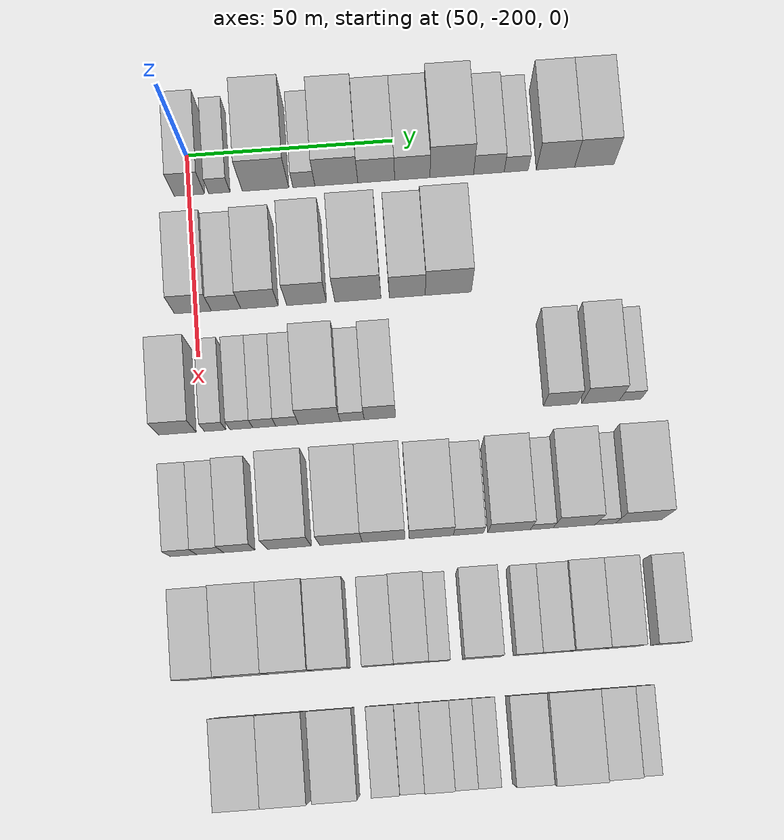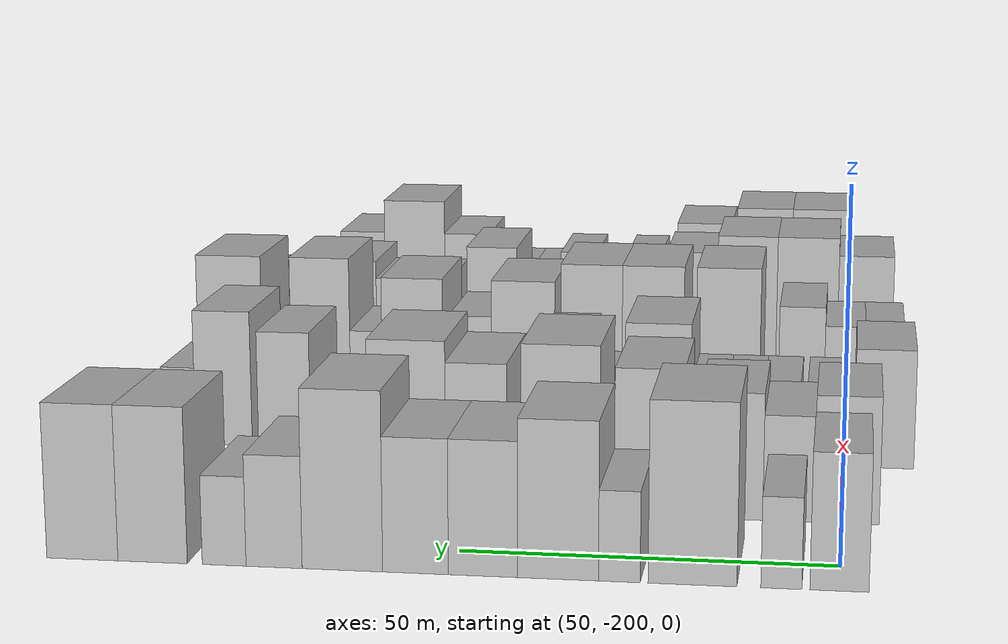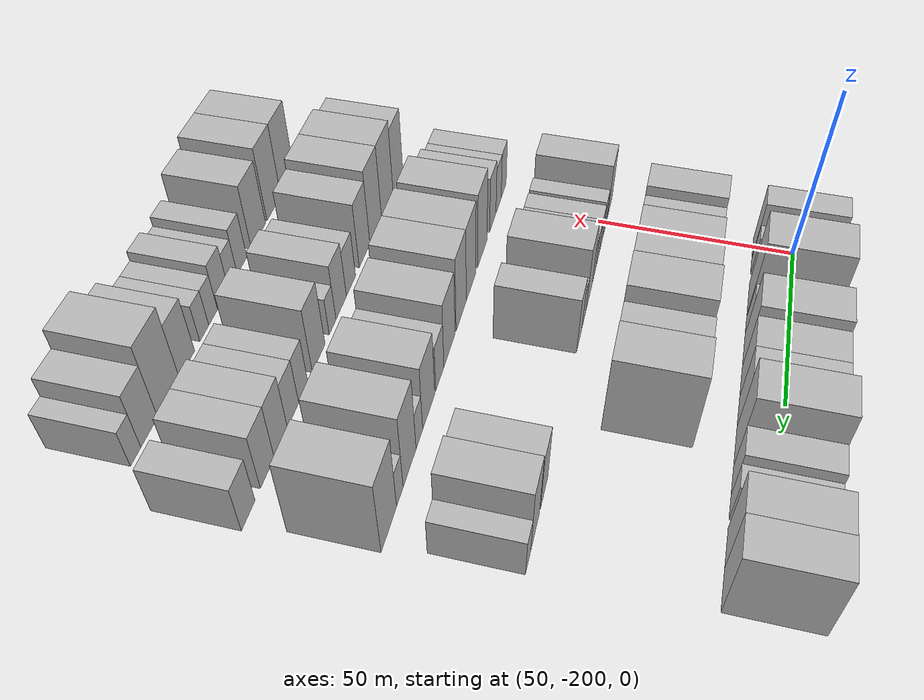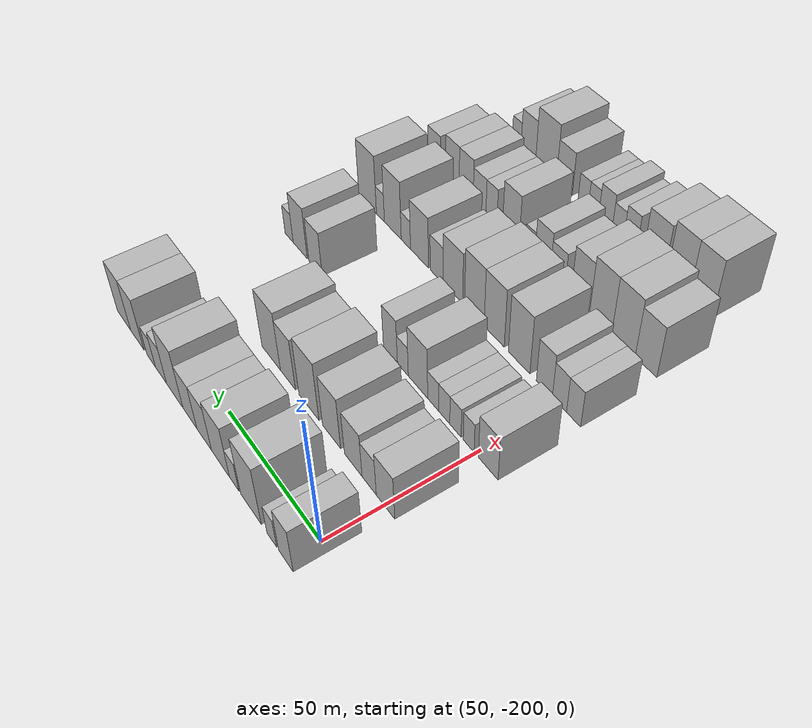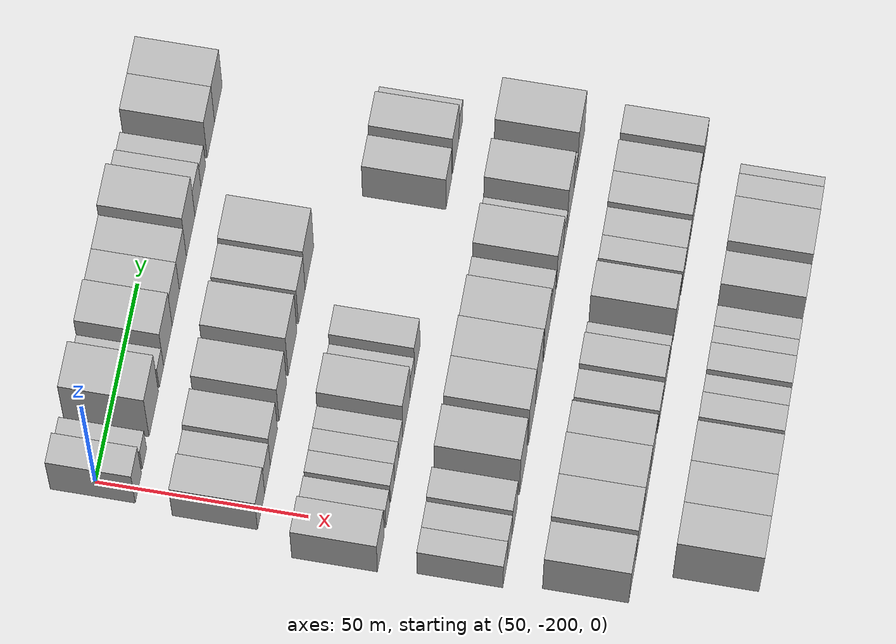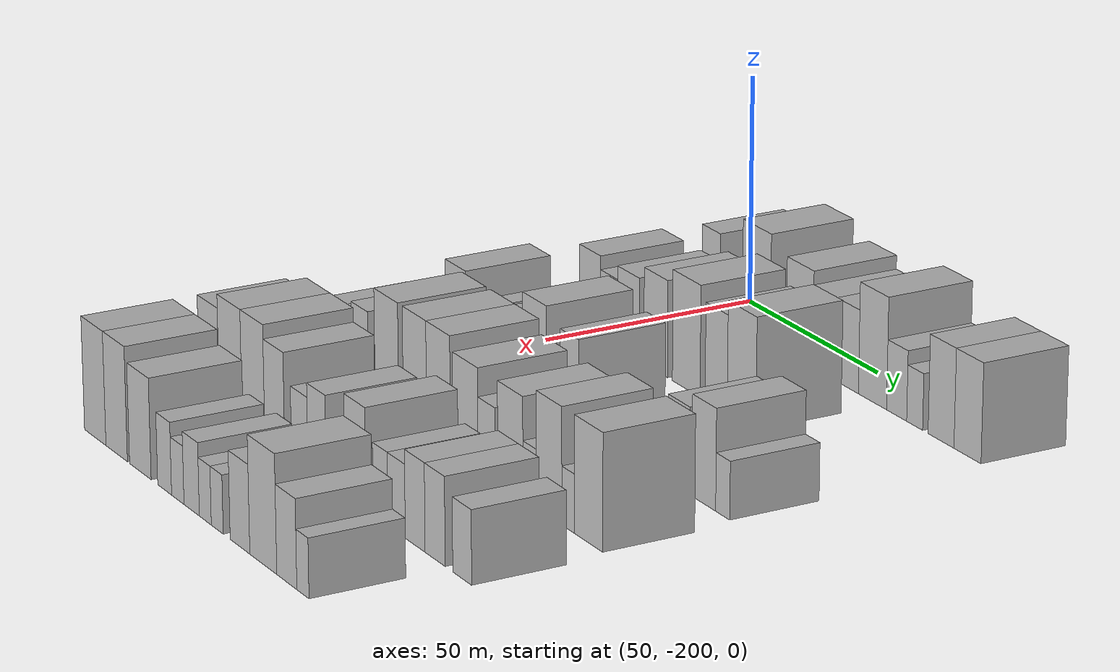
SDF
<sdf version="1.6">
 <world name="default">
  <model name="building_36">
   <static>1</static>
   <pose>50.0000 -199.8743 0 0.000000 0.000000 0.000000</pose>
   <link name="link">
    <pose>0 0 9.00 0 0 0</pose>
    <collision name="collision"><geometry><box><size>20.0000 7.3781 18.0000</size></box></geometry></collision>
    <visual name="visual">
     <cast_shadows>0</cast_shadows>
     <geometry><box><size>20.0000 7.3781 18.0000</size></box></geometry>
     <material>
      <script>
       <uri>model://HANNAS_wall/materials/scripts</uri>
       <uri>model://HANNAS_wall/materials/textures</uri>
       <name>vrc/HANNAS_wall</name>
      </script>
     </material>
    </visual>
   </link>
  </model>
  <model name="building_37">
   <static>1</static>
   <pose>50.0000 -192.6110 0 0.000000 0.000000 0.000000</pose>
   <link name="link">
    <pose>0 0 6.00 0 0 0</pose>
    <collision name="collision"><geometry><box><size>20.0000 5.1484 12.0000</size></box></geometry></collision>
    <visual name="visual">
     <cast_shadows>0</cast_shadows>
     <geometry><box><size>20.0000 5.1484 12.0000</size></box></geometry>
     <material>
      <script>
       <uri>model://HANNAS_wall/materials/scripts</uri>
       <uri>model://HANNAS_wall/materials/textures</uri>
       <name>vrc/HANNAS_wall</name>
      </script>
     </material>
    </visual>
   </link>
  </model>
  <model name="building_38">
   <static>1</static>
   <pose>50.0000 -181.4096 0 0.000000 0.000000 0.000000</pose>
   <link name="link">
    <pose>0 0 12.00 0 0 0</pose>
    <collision name="collision"><geometry><box><size>20.0000 11.2545 24.0000</size></box></geometry></collision>
    <visual name="visual">
     <cast_shadows>0</cast_shadows>
     <geometry><box><size>20.0000 11.2545 24.0000</size></box></geometry>
     <material>
      <script>
       <uri>model://HANNAS_wall/materials/scripts</uri>
       <uri>model://HANNAS_wall/materials/textures</uri>
       <name>vrc/HANNAS_wall</name>
      </script>
     </material>
    </visual>
   </link>
  </model>
  <model name="building_39">
   <static>1</static>
   <pose>50.0000 -172.1249 0 0.000000 0.000000 0.000000</pose>
   <link name="link">
    <pose>0 0 6.00 0 0 0</pose>
    <collision name="collision"><geometry><box><size>20.0000 5.3148 12.0000</size></box></geometry></collision>
    <visual name="visual">
     <cast_shadows>0</cast_shadows>
     <geometry><box><size>20.0000 5.3148 12.0000</size></box></geometry>
     <material>
      <script>
       <uri>model://HANNAS_wall/materials/scripts</uri>
       <uri>model://HANNAS_wall/materials/textures</uri>
       <name>vrc/HANNAS_wall</name>
      </script>
     </material>
    </visual>
   </link>
  </model>
  <model name="building_40">
   <static>1</static>
   <pose>50.0000 -164.2645 0 0.000000 0.000000 0.000000</pose>
   <link name="link">
    <pose>0 0 10.50 0 0 0</pose>
    <collision name="collision"><geometry><box><size>20.0000 10.4061 21.0000</size></box></geometry></collision>
    <visual name="visual">
     <cast_shadows>0</cast_shadows>
     <geometry><box><size>20.0000 10.4061 21.0000</size></box></geometry>
     <material>
      <script>
       <uri>model://HANNAS_wall/materials/scripts</uri>
       <uri>model://HANNAS_wall/materials/textures</uri>
       <name>vrc/HANNAS_wall</name>
      </script>
     </material>
    </visual>
   </link>
  </model>
  <model name="building_41">
   <static>1</static>
   <pose>50.0000 -154.5914 0 0.000000 0.000000 0.000000</pose>
   <link name="link">
    <pose>0 0 9.00 0 0 0</pose>
    <collision name="collision"><geometry><box><size>20.0000 8.9401 18.0000</size></box></geometry></collision>
    <visual name="visual">
     <cast_shadows>0</cast_shadows>
     <geometry><box><size>20.0000 8.9401 18.0000</size></box></geometry>
     <material>
      <script>
       <uri>model://HANNAS_wall/materials/scripts</uri>
       <uri>model://HANNAS_wall/materials/textures</uri>
       <name>vrc/HANNAS_wall</name>
      </script>
     </material>
    </visual>
   </link>
  </model>
  <model name="building_42">
   <static>1</static>
   <pose>50.0000 -145.8395 0 0.000000 0.000000 0.000000</pose>
   <link name="link">
    <pose>0 0 9.00 0 0 0</pose>
    <collision name="collision"><geometry><box><size>20.0000 8.5636 18.0000</size></box></geometry></collision>
    <visual name="visual">
     <cast_shadows>0</cast_shadows>
     <geometry><box><size>20.0000 8.5636 18.0000</size></box></geometry>
     <material>
      <script>
       <uri>model://HANNAS_wall/materials/scripts</uri>
       <uri>model://HANNAS_wall/materials/textures</uri>
       <name>vrc/HANNAS_wall</name>
      </script>
     </material>
    </visual>
   </link>
  </model>
  <model name="building_43">
   <static>1</static>
   <pose>50.0000 -136.2697 0 0.000000 0.000000 0.000000</pose>
   <link name="link">
    <pose>0 0 12.00 0 0 0</pose>
    <collision name="collision"><geometry><box><size>20.0000 10.5761 24.0000</size></box></geometry></collision>
    <visual name="visual">
     <cast_shadows>0</cast_shadows>
     <geometry><box><size>20.0000 10.5761 24.0000</size></box></geometry>
     <material>
      <script>
       <uri>model://HANNAS_wall/materials/scripts</uri>
       <uri>model://HANNAS_wall/materials/textures</uri>
       <name>vrc/HANNAS_wall</name>
      </script>
     </material>
    </visual>
   </link>
  </model>
  <model name="building_44">
   <static>1</static>
   <pose>50.0000 -127.2635 0 0.000000 0.000000 0.000000</pose>
   <link name="link">
    <pose>0 0 7.50 0 0 0</pose>
    <collision name="collision"><geometry><box><size>20.0000 7.4361 15.0000</size></box></geometry></collision>
    <visual name="visual">
     <cast_shadows>0</cast_shadows>
     <geometry><box><size>20.0000 7.4361 15.0000</size></box></geometry>
     <material>
      <script>
       <uri>model://HANNAS_wall/materials/scripts</uri>
       <uri>model://HANNAS_wall/materials/textures</uri>
       <name>vrc/HANNAS_wall</name>
      </script>
     </material>
    </visual>
   </link>
  </model>
  <model name="building_45">
   <static>1</static>
   <pose>50.0000 -120.6309 0 0.000000 0.000000 0.000000</pose>
   <link name="link">
    <pose>0 0 6.00 0 0 0</pose>
    <collision name="collision"><geometry><box><size>20.0000 5.8292 12.0000</size></box></geometry></collision>
    <visual name="visual">
     <cast_shadows>0</cast_shadows>
     <geometry><box><size>20.0000 5.8292 12.0000</size></box></geometry>
     <material>
      <script>
       <uri>model://HANNAS_wall/materials/scripts</uri>
       <uri>model://HANNAS_wall/materials/textures</uri>
       <name>vrc/HANNAS_wall</name>
      </script>
     </material>
    </visual>
   </link>
  </model>
  <model name="building_46">
   <static>1</static>
   <pose>50.0000 -111.0627 0 0.000000 0.000000 0.000000</pose>
   <link name="link">
    <pose>0 0 10.50 0 0 0</pose>
    <collision name="collision"><geometry><box><size>20.0000 9.3072 21.0000</size></box></geometry></collision>
    <visual name="visual">
     <cast_shadows>0</cast_shadows>
     <geometry><box><size>20.0000 9.3072 21.0000</size></box></geometry>
     <material>
      <script>
       <uri>model://HANNAS_wall/materials/scripts</uri>
       <uri>model://HANNAS_wall/materials/textures</uri>
       <name>vrc/HANNAS_wall</name>
      </script>
     </material>
    </visual>
   </link>
  </model>
  <model name="building_47">
   <static>1</static>
   <pose>50.0000 -101.6042 0 0.000000 0.000000 0.000000</pose>
   <link name="link">
    <pose>0 0 10.50 0 0 0</pose>
    <collision name="collision"><geometry><box><size>20.0000 9.6098 21.0000</size></box></geometry></collision>
    <visual name="visual">
     <cast_shadows>0</cast_shadows>
     <geometry><box><size>20.0000 9.6098 21.0000</size></box></geometry>
     <material>
      <script>
       <uri>model://HANNAS_wall/materials/scripts</uri>
       <uri>model://HANNAS_wall/materials/textures</uri>
       <name>vrc/HANNAS_wall</name>
      </script>
     </material>
    </visual>
   </link>
  </model>
  <model name="building_146">
   <static>1</static>
   <pose>79.0000 -200.6198 0 0.000000 0.000000 0.000000</pose>
   <link name="link">
    <pose>0 0 9.00 0 0 0</pose>
    <collision name="collision"><geometry><box><size>20.0000 8.8712 18.0000</size></box></geometry></collision>
    <visual name="visual">
     <cast_shadows>0</cast_shadows>
     <geometry><box><size>20.0000 8.8712 18.0000</size></box></geometry>
     <material>
      <script>
       <uri>model://HANNAS_wall/materials/scripts</uri>
       <uri>model://HANNAS_wall/materials/textures</uri>
       <name>vrc/HANNAS_wall</name>
      </script>
     </material>
    </visual>
   </link>
  </model>
  <model name="building_147">
   <static>1</static>
   <pose>79.0000 -192.6700 0 0.000000 0.000000 0.000000</pose>
   <link name="link">
    <pose>0 0 7.50 0 0 0</pose>
    <collision name="collision"><geometry><box><size>20.0000 7.0284 15.0000</size></box></geometry></collision>
    <visual name="visual">
     <cast_shadows>0</cast_shadows>
     <geometry><box><size>20.0000 7.0284 15.0000</size></box></geometry>
     <material>
      <script>
       <uri>model://HANNAS_wall/materials/scripts</uri>
       <uri>model://HANNAS_wall/materials/textures</uri>
       <name>vrc/HANNAS_wall</name>
      </script>
     </material>
    </visual>
   </link>
  </model>
  <model name="building_148">
   <static>1</static>
   <pose>79.0000 -184.6630 0 0.000000 0.000000 0.000000</pose>
   <link name="link">
    <pose>0 0 9.00 0 0 0</pose>
    <collision name="collision"><geometry><box><size>20.0000 8.9857 18.0000</size></box></geometry></collision>
    <visual name="visual">
     <cast_shadows>0</cast_shadows>
     <geometry><box><size>20.0000 8.9857 18.0000</size></box></geometry>
     <material>
      <script>
       <uri>model://HANNAS_wall/materials/scripts</uri>
       <uri>model://HANNAS_wall/materials/textures</uri>
       <name>vrc/HANNAS_wall</name>
      </script>
     </material>
    </visual>
   </link>
  </model>
  <model name="building_149">
   <static>1</static>
   <pose>79.0000 -173.3785 0 0.000000 0.000000 0.000000</pose>
   <link name="link">
    <pose>0 0 10.50 0 0 0</pose>
    <collision name="collision"><geometry><box><size>20.0000 9.5834 21.0000</size></box></geometry></collision>
    <visual name="visual">
     <cast_shadows>0</cast_shadows>
     <geometry><box><size>20.0000 9.5834 21.0000</size></box></geometry>
     <material>
      <script>
       <uri>model://HANNAS_wall/materials/scripts</uri>
       <uri>model://HANNAS_wall/materials/textures</uri>
       <name>vrc/HANNAS_wall</name>
      </script>
     </material>
    </visual>
   </link>
  </model>
  <model name="building_150">
   <static>1</static>
   <pose>79.0000 -161.0557 0 0.000000 0.000000 0.000000</pose>
   <link name="link">
    <pose>0 0 12.00 0 0 0</pose>
    <collision name="collision"><geometry><box><size>20.0000 11.0622 24.0000</size></box></geometry></collision>
    <visual name="visual">
     <cast_shadows>0</cast_shadows>
     <geometry><box><size>20.0000 11.0622 24.0000</size></box></geometry>
     <material>
      <script>
       <uri>model://HANNAS_wall/materials/scripts</uri>
       <uri>model://HANNAS_wall/materials/textures</uri>
       <name>vrc/HANNAS_wall</name>
      </script>
     </material>
    </visual>
   </link>
  </model>
  <model name="building_151">
   <static>1</static>
   <pose>79.0000 -149.2104 0 0.000000 0.000000 0.000000</pose>
   <link name="link">
    <pose>0 0 10.50 0 0 0</pose>
    <collision name="collision"><geometry><box><size>20.0000 8.6285 21.0000</size></box></geometry></collision>
    <visual name="visual">
     <cast_shadows>0</cast_shadows>
     <geometry><box><size>20.0000 8.6285 21.0000</size></box></geometry>
     <material>
      <script>
       <uri>model://HANNAS_wall/materials/scripts</uri>
       <uri>model://HANNAS_wall/materials/textures</uri>
       <name>vrc/HANNAS_wall</name>
      </script>
     </material>
    </visual>
   </link>
  </model>
  <model name="building_152">
   <static>1</static>
   <pose>79.0000 -139.3650 0 0.000000 0.000000 0.000000</pose>
   <link name="link">
    <pose>0 0 12.00 0 0 0</pose>
    <collision name="collision"><geometry><box><size>20.0000 11.0624 24.0000</size></box></geometry></collision>
    <visual name="visual">
     <cast_shadows>0</cast_shadows>
     <geometry><box><size>20.0000 11.0624 24.0000</size></box></geometry>
     <material>
      <script>
       <uri>model://HANNAS_wall/materials/scripts</uri>
       <uri>model://HANNAS_wall/materials/textures</uri>
       <name>vrc/HANNAS_wall</name>
      </script>
     </material>
    </visual>
   </link>
  </model>
  <model name="building_251">
   <static>1</static>
   <pose>108.0000 -205.9452 0 0.000000 0.000000 0.000000</pose>
   <link name="link">
    <pose>0 0 9.00 0 0 0</pose>
    <collision name="collision"><geometry><box><size>20.0000 8.8668 18.0000</size></box></geometry></collision>
    <visual name="visual">
     <cast_shadows>0</cast_shadows>
     <geometry><box><size>20.0000 8.8668 18.0000</size></box></geometry>
     <material>
      <script>
       <uri>model://HANNAS_wall/materials/scripts</uri>
       <uri>model://HANNAS_wall/materials/textures</uri>
       <name>vrc/HANNAS_wall</name>
      </script>
     </material>
    </visual>
   </link>
  </model>
  <model name="building_252">
   <static>1</static>
   <pose>108.0000 -196.9844 0 0.000000 0.000000 0.000000</pose>
   <link name="link">
    <pose>0 0 6.00 0 0 0</pose>
    <collision name="collision"><geometry><box><size>20.0000 5.0547 12.0000</size></box></geometry></collision>
    <visual name="visual">
     <cast_shadows>0</cast_shadows>
     <geometry><box><size>20.0000 5.0547 12.0000</size></box></geometry>
     <material>
      <script>
       <uri>model://HANNAS_wall/materials/scripts</uri>
       <uri>model://HANNAS_wall/materials/textures</uri>
       <name>vrc/HANNAS_wall</name>
      </script>
     </material>
    </visual>
   </link>
  </model>
  <model name="building_253">
   <static>1</static>
   <pose>108.0000 -190.7448 0 0.000000 0.000000 0.000000</pose>
   <link name="link">
    <pose>0 0 6.00 0 0 0</pose>
    <collision name="collision"><geometry><box><size>20.0000 5.4245 12.0000</size></box></geometry></collision>
    <visual name="visual">
     <cast_shadows>0</cast_shadows>
     <geometry><box><size>20.0000 5.4245 12.0000</size></box></geometry>
     <material>
      <script>
       <uri>model://HANNAS_wall/materials/scripts</uri>
       <uri>model://HANNAS_wall/materials/textures</uri>
       <name>vrc/HANNAS_wall</name>
      </script>
     </material>
    </visual>
   </link>
  </model>
  <model name="building_254">
   <static>1</static>
   <pose>108.0000 -185.3062 0 0.000000 0.000000 0.000000</pose>
   <link name="link">
    <pose>0 0 6.00 0 0 0</pose>
    <collision name="collision"><geometry><box><size>20.0000 5.4527 12.0000</size></box></geometry></collision>
    <visual name="visual">
     <cast_shadows>0</cast_shadows>
     <geometry><box><size>20.0000 5.4527 12.0000</size></box></geometry>
     <material>
      <script>
       <uri>model://HANNAS_wall/materials/scripts</uri>
       <uri>model://HANNAS_wall/materials/textures</uri>
       <name>vrc/HANNAS_wall</name>
      </script>
     </material>
    </visual>
   </link>
  </model>
  <model name="building_255">
   <static>1</static>
   <pose>108.0000 -179.8728 0 0.000000 0.000000 0.000000</pose>
   <link name="link">
    <pose>0 0 6.00 0 0 0</pose>
    <collision name="collision"><geometry><box><size>20.0000 5.4140 12.0000</size></box></geometry></collision>
    <visual name="visual">
     <cast_shadows>0</cast_shadows>
     <geometry><box><size>20.0000 5.4140 12.0000</size></box></geometry>
     <material>
      <script>
       <uri>model://HANNAS_wall/materials/scripts</uri>
       <uri>model://HANNAS_wall/materials/textures</uri>
       <name>vrc/HANNAS_wall</name>
      </script>
     </material>
    </visual>
   </link>
  </model>
  <model name="building_256">
   <static>1</static>
   <pose>108.0000 -172.2423 0 0.000000 0.000000 0.000000</pose>
   <link name="link">
    <pose>0 0 10.50 0 0 0</pose>
    <collision name="collision"><geometry><box><size>20.0000 9.8471 21.0000</size></box></geometry></collision>
    <visual name="visual">
     <cast_shadows>0</cast_shadows>
     <geometry><box><size>20.0000 9.8471 21.0000</size></box></geometry>
     <material>
      <script>
       <uri>model://HANNAS_wall/materials/scripts</uri>
       <uri>model://HANNAS_wall/materials/textures</uri>
       <name>vrc/HANNAS_wall</name>
      </script>
     </material>
    </visual>
   </link>
  </model>
  <model name="building_257">
   <static>1</static>
   <pose>108.0000 -164.4592 0 0.000000 0.000000 0.000000</pose>
   <link name="link">
    <pose>0 0 6.00 0 0 0</pose>
    <collision name="collision"><geometry><box><size>20.0000 5.7191 12.0000</size></box></geometry></collision>
    <visual name="visual">
     <cast_shadows>0</cast_shadows>
     <geometry><box><size>20.0000 5.7191 12.0000</size></box></geometry>
     <material>
      <script>
       <uri>model://HANNAS_wall/materials/scripts</uri>
       <uri>model://HANNAS_wall/materials/textures</uri>
       <name>vrc/HANNAS_wall</name>
      </script>
     </material>
    </visual>
   </link>
  </model>
  <model name="building_258">
   <static>1</static>
   <pose>108.0000 -157.8819 0 0.000000 0.000000 0.000000</pose>
   <link name="link">
    <pose>0 0 9.00 0 0 0</pose>
    <collision name="collision"><geometry><box><size>20.0000 7.4354 18.0000</size></box></geometry></collision>
    <visual name="visual">
     <cast_shadows>0</cast_shadows>
     <geometry><box><size>20.0000 7.4354 18.0000</size></box></geometry>
     <material>
      <script>
       <uri>model://HANNAS_wall/materials/scripts</uri>
       <uri>model://HANNAS_wall/materials/textures</uri>
       <name>vrc/HANNAS_wall</name>
      </script>
     </material>
    </visual>
   </link>
  </model>
  <model name="building_259">
   <static>1</static>
   <pose>108.0000 -114.9120 0 0.000000 0.000000 0.000000</pose>
   <link name="link">
    <pose>0 0 9.00 0 0 0</pose>
    <collision name="collision"><geometry><box><size>20.0000 8.1681 18.0000</size></box></geometry></collision>
    <visual name="visual">
     <cast_shadows>0</cast_shadows>
     <geometry><box><size>20.0000 8.1681 18.0000</size></box></geometry>
     <material>
      <script>
       <uri>model://HANNAS_wall/materials/scripts</uri>
       <uri>model://HANNAS_wall/materials/textures</uri>
       <name>vrc/HANNAS_wall</name>
      </script>
     </material>
    </visual>
   </link>
  </model>
  <model name="building_260">
   <static>1</static>
   <pose>108.0000 -105.3697 0 0.000000 0.000000 0.000000</pose>
   <link name="link">
    <pose>0 0 10.50 0 0 0</pose>
    <collision name="collision"><geometry><box><size>20.0000 8.9165 21.0000</size></box></geometry></collision>
    <visual name="visual">
     <cast_shadows>0</cast_shadows>
     <geometry><box><size>20.0000 8.9165 21.0000</size></box></geometry>
     <material>
      <script>
       <uri>model://HANNAS_wall/materials/scripts</uri>
       <uri>model://HANNAS_wall/materials/textures</uri>
       <name>vrc/HANNAS_wall</name>
      </script>
     </material>
    </visual>
   </link>
  </model>
  <model name="building_261">
   <static>1</static>
   <pose>108.0000 -98.2957 0 0.000000 0.000000 0.000000</pose>
   <link name="link">
    <pose>0 0 6.00 0 0 0</pose>
    <collision name="collision"><geometry><box><size>20.0000 5.2314 12.0000</size></box></geometry></collision>
    <visual name="visual">
     <cast_shadows>0</cast_shadows>
     <geometry><box><size>20.0000 5.2314 12.0000</size></box></geometry>
     <material>
      <script>
       <uri>model://HANNAS_wall/materials/scripts</uri>
       <uri>model://HANNAS_wall/materials/textures</uri>
       <name>vrc/HANNAS_wall</name>
      </script>
     </material>
    </visual>
   </link>
  </model>
  <model name="building_368">
   <static>1</static>
   <pose>137.0000 -206.0901 0 0.000000 0.000000 0.000000</pose>
   <link name="link">
    <pose>0 0 7.50 0 0 0</pose>
    <collision name="collision"><geometry><box><size>20.0000 6.2022 15.0000</size></box></geometry></collision>
    <visual name="visual">
     <cast_shadows>0</cast_shadows>
     <geometry><box><size>20.0000 6.2022 15.0000</size></box></geometry>
     <material>
      <script>
       <uri>model://HANNAS_wall/materials/scripts</uri>
       <uri>model://HANNAS_wall/materials/textures</uri>
       <name>vrc/HANNAS_wall</name>
      </script>
     </material>
    </visual>
   </link>
  </model>
  <model name="building_369">
   <static>1</static>
   <pose>137.0000 -199.8283 0 0.000000 0.000000 0.000000</pose>
   <link name="link">
    <pose>0 0 7.50 0 0 0</pose>
    <collision name="collision"><geometry><box><size>20.0000 6.3214 15.0000</size></box></geometry></collision>
    <visual name="visual">
     <cast_shadows>0</cast_shadows>
     <geometry><box><size>20.0000 6.3214 15.0000</size></box></geometry>
     <material>
      <script>
       <uri>model://HANNAS_wall/materials/scripts</uri>
       <uri>model://HANNAS_wall/materials/textures</uri>
       <name>vrc/HANNAS_wall</name>
      </script>
     </material>
    </visual>
   </link>
  </model>
  <model name="building_370">
   <static>1</static>
   <pose>137.0000 -192.9978 0 0.000000 0.000000 0.000000</pose>
   <link name="link">
    <pose>0 0 9.00 0 0 0</pose>
    <collision name="collision"><geometry><box><size>20.0000 7.3396 18.0000</size></box></geometry></collision>
    <visual name="visual">
     <cast_shadows>0</cast_shadows>
     <geometry><box><size>20.0000 7.3396 18.0000</size></box></geometry>
     <material>
      <script>
       <uri>model://HANNAS_wall/materials/scripts</uri>
       <uri>model://HANNAS_wall/materials/textures</uri>
       <name>vrc/HANNAS_wall</name>
      </script>
     </material>
    </visual>
   </link>
  </model>
  <model name="building_371">
   <static>1</static>
   <pose>137.0000 -181.1920 0 0.000000 0.000000 0.000000</pose>
   <link name="link">
    <pose>0 0 12.00 0 0 0</pose>
    <collision name="collision"><geometry><box><size>20.0000 10.2720 24.0000</size></box></geometry></collision>
    <visual name="visual">
     <cast_shadows>0</cast_shadows>
     <geometry><box><size>20.0000 10.2720 24.0000</size></box></geometry>
     <material>
      <script>
       <uri>model://HANNAS_wall/materials/scripts</uri>
       <uri>model://HANNAS_wall/materials/textures</uri>
       <name>vrc/HANNAS_wall</name>
      </script>
     </material>
    </visual>
   </link>
  </model>
  <model name="building_372">
   <static>1</static>
   <pose>137.0000 -169.0629 0 0.000000 0.000000 0.000000</pose>
   <link name="link">
    <pose>0 0 12.00 0 0 0</pose>
    <collision name="collision"><geometry><box><size>20.0000 9.9862 24.0000</size></box></geometry></collision>
    <visual name="visual">
     <cast_shadows>0</cast_shadows>
     <geometry><box><size>20.0000 9.9862 24.0000</size></box></geometry>
     <material>
      <script>
       <uri>model://HANNAS_wall/materials/scripts</uri>
       <uri>model://HANNAS_wall/materials/textures</uri>
       <name>vrc/HANNAS_wall</name>
      </script>
     </material>
    </visual>
   </link>
  </model>
  <model name="building_373">
   <static>1</static>
   <pose>137.0000 -159.0676 0 0.000000 0.000000 0.000000</pose>
   <link name="link">
    <pose>0 0 12.00 0 0 0</pose>
    <collision name="collision"><geometry><box><size>20.0000 10.0045 24.0000</size></box></geometry></collision>
    <visual name="visual">
     <cast_shadows>0</cast_shadows>
     <geometry><box><size>20.0000 10.0045 24.0000</size></box></geometry>
     <material>
      <script>
       <uri>model://HANNAS_wall/materials/scripts</uri>
       <uri>model://HANNAS_wall/materials/textures</uri>
       <name>vrc/HANNAS_wall</name>
      </script>
     </material>
    </visual>
   </link>
  </model>
  <model name="building_374">
   <static>1</static>
   <pose>137.0000 -147.8747 0 0.000000 0.000000 0.000000</pose>
   <link name="link">
    <pose>0 0 10.50 0 0 0</pose>
    <collision name="collision"><geometry><box><size>20.0000 10.3813 21.0000</size></box></geometry></collision>
    <visual name="visual">
     <cast_shadows>0</cast_shadows>
     <geometry><box><size>20.0000 10.3813 21.0000</size></box></geometry>
     <material>
      <script>
       <uri>model://HANNAS_wall/materials/scripts</uri>
       <uri>model://HANNAS_wall/materials/textures</uri>
       <name>vrc/HANNAS_wall</name>
      </script>
     </material>
    </visual>
   </link>
  </model>
  <model name="building_375">
   <static>1</static>
   <pose>137.0000 -139.1547 0 0.000000 0.000000 0.000000</pose>
   <link name="link">
    <pose>0 0 7.50 0 0 0</pose>
    <collision name="collision"><geometry><box><size>20.0000 7.0588 15.0000</size></box></geometry></collision>
    <visual name="visual">
     <cast_shadows>0</cast_shadows>
     <geometry><box><size>20.0000 7.0588 15.0000</size></box></geometry>
     <material>
      <script>
       <uri>model://HANNAS_wall/materials/scripts</uri>
       <uri>model://HANNAS_wall/materials/textures</uri>
       <name>vrc/HANNAS_wall</name>
      </script>
     </material>
    </visual>
   </link>
  </model>
  <model name="building_376">
   <static>1</static>
   <pose>137.0000 -129.5781 0 0.000000 0.000000 0.000000</pose>
   <link name="link">
    <pose>0 0 10.50 0 0 0</pose>
    <collision name="collision"><geometry><box><size>20.0000 10.0942 21.0000</size></box></geometry></collision>
    <visual name="visual">
     <cast_shadows>0</cast_shadows>
     <geometry><box><size>20.0000 10.0942 21.0000</size></box></geometry>
     <material>
      <script>
       <uri>model://HANNAS_wall/materials/scripts</uri>
       <uri>model://HANNAS_wall/materials/textures</uri>
       <name>vrc/HANNAS_wall</name>
      </script>
     </material>
    </visual>
   </link>
  </model>
  <model name="building_377">
   <static>1</static>
   <pose>137.0000 -121.8605 0 0.000000 0.000000 0.000000</pose>
   <link name="link">
    <pose>0 0 6.00 0 0 0</pose>
    <collision name="collision"><geometry><box><size>20.0000 5.3411 12.0000</size></box></geometry></collision>
    <visual name="visual">
     <cast_shadows>0</cast_shadows>
     <geometry><box><size>20.0000 5.3411 12.0000</size></box></geometry>
     <material>
      <script>
       <uri>model://HANNAS_wall/materials/scripts</uri>
       <uri>model://HANNAS_wall/materials/textures</uri>
       <name>vrc/HANNAS_wall</name>
      </script>
     </material>
    </visual>
   </link>
  </model>
  <model name="building_378">
   <static>1</static>
   <pose>137.0000 -114.2267 0 0.000000 0.000000 0.000000</pose>
   <link name="link">
    <pose>0 0 12.00 0 0 0</pose>
    <collision name="collision"><geometry><box><size>20.0000 9.9264 24.0000</size></box></geometry></collision>
    <visual name="visual">
     <cast_shadows>0</cast_shadows>
     <geometry><box><size>20.0000 9.9264 24.0000</size></box></geometry>
     <material>
      <script>
       <uri>model://HANNAS_wall/materials/scripts</uri>
       <uri>model://HANNAS_wall/materials/textures</uri>
       <name>vrc/HANNAS_wall</name>
      </script>
     </material>
    </visual>
   </link>
  </model>
  <model name="building_379">
   <static>1</static>
   <pose>137.0000 -106.8498 0 0.000000 0.000000 0.000000</pose>
   <link name="link">
    <pose>0 0 6.00 0 0 0</pose>
    <collision name="collision"><geometry><box><size>20.0000 4.8274 12.0000</size></box></geometry></collision>
    <visual name="visual">
     <cast_shadows>0</cast_shadows>
     <geometry><box><size>20.0000 4.8274 12.0000</size></box></geometry>
     <material>
      <script>
       <uri>model://HANNAS_wall/materials/scripts</uri>
       <uri>model://HANNAS_wall/materials/textures</uri>
       <name>vrc/HANNAS_wall</name>
      </script>
     </material>
    </visual>
   </link>
  </model>
  <model name="building_380">
   <static>1</static>
   <pose>137.0000 -99.0084 0 0.000000 0.000000 0.000000</pose>
   <link name="link">
    <pose>0 0 12.00 0 0 0</pose>
    <collision name="collision"><geometry><box><size>20.0000 10.8554 24.0000</size></box></geometry></collision>
    <visual name="visual">
     <cast_shadows>0</cast_shadows>
     <geometry><box><size>20.0000 10.8554 24.0000</size></box></geometry>
     <material>
      <script>
       <uri>model://HANNAS_wall/materials/scripts</uri>
       <uri>model://HANNAS_wall/materials/textures</uri>
       <name>vrc/HANNAS_wall</name>
      </script>
     </material>
    </visual>
   </link>
  </model>
  <model name="building_478">
   <static>1</static>
   <pose>166.0000 -203.1444 0 0.000000 0.000000 0.000000</pose>
   <link name="link">
    <pose>0 0 10.50 0 0 0</pose>
    <collision name="collision"><geometry><box><size>20.0000 9.3325 21.0000</size></box></geometry></collision>
    <visual name="visual">
     <cast_shadows>0</cast_shadows>
     <geometry><box><size>20.0000 9.3325 21.0000</size></box></geometry>
     <material>
      <script>
       <uri>model://HANNAS_wall/materials/scripts</uri>
       <uri>model://HANNAS_wall/materials/textures</uri>
       <name>vrc/HANNAS_wall</name>
      </script>
     </material>
    </visual>
   </link>
  </model>
  <model name="building_479">
   <static>1</static>
   <pose>166.0000 -193.2386 0 0.000000 0.000000 0.000000</pose>
   <link name="link">
    <pose>0 0 12.00 0 0 0</pose>
    <collision name="collision"><geometry><box><size>20.0000 10.4790 24.0000</size></box></geometry></collision>
    <visual name="visual">
     <cast_shadows>0</cast_shadows>
     <geometry><box><size>20.0000 10.4790 24.0000</size></box></geometry>
     <material>
      <script>
       <uri>model://HANNAS_wall/materials/scripts</uri>
       <uri>model://HANNAS_wall/materials/textures</uri>
       <name>vrc/HANNAS_wall</name>
      </script>
     </material>
    </visual>
   </link>
  </model>
  <model name="building_480">
   <static>1</static>
   <pose>166.0000 -182.8965 0 0.000000 0.000000 0.000000</pose>
   <link name="link">
    <pose>0 0 12.00 0 0 0</pose>
    <collision name="collision"><geometry><box><size>20.0000 10.2052 24.0000</size></box></geometry></collision>
    <visual name="visual">
     <cast_shadows>0</cast_shadows>
     <geometry><box><size>20.0000 10.2052 24.0000</size></box></geometry>
     <material>
      <script>
       <uri>model://HANNAS_wall/materials/scripts</uri>
       <uri>model://HANNAS_wall/materials/textures</uri>
       <name>vrc/HANNAS_wall</name>
      </script>
     </material>
    </visual>
   </link>
  </model>
  <model name="building_481">
   <static>1</static>
   <pose>166.0000 -173.3613 0 0.000000 0.000000 0.000000</pose>
   <link name="link">
    <pose>0 0 10.50 0 0 0</pose>
    <collision name="collision"><geometry><box><size>20.0000 8.8652 21.0000</size></box></geometry></collision>
    <visual name="visual">
     <cast_shadows>0</cast_shadows>
     <geometry><box><size>20.0000 8.8652 21.0000</size></box></geometry>
     <material>
      <script>
       <uri>model://HANNAS_wall/materials/scripts</uri>
       <uri>model://HANNAS_wall/materials/textures</uri>
       <name>vrc/HANNAS_wall</name>
      </script>
     </material>
    </visual>
   </link>
  </model>
  <model name="building_482">
   <static>1</static>
   <pose>166.0000 -162.3306 0 0.000000 0.000000 0.000000</pose>
   <link name="link">
    <pose>0 0 7.50 0 0 0</pose>
    <collision name="collision"><geometry><box><size>20.0000 7.1962 15.0000</size></box></geometry></collision>
    <visual name="visual">
     <cast_shadows>0</cast_shadows>
     <geometry><box><size>20.0000 7.1962 15.0000</size></box></geometry>
     <material>
      <script>
       <uri>model://HANNAS_wall/materials/scripts</uri>
       <uri>model://HANNAS_wall/materials/textures</uri>
       <name>vrc/HANNAS_wall</name>
      </script>
     </material>
    </visual>
   </link>
  </model>
  <model name="building_483">
   <static>1</static>
   <pose>166.0000 -154.7738 0 0.000000 0.000000 0.000000</pose>
   <link name="link">
    <pose>0 0 9.00 0 0 0</pose>
    <collision name="collision"><geometry><box><size>20.0000 7.9174 18.0000</size></box></geometry></collision>
    <visual name="visual">
     <cast_shadows>0</cast_shadows>
     <geometry><box><size>20.0000 7.9174 18.0000</size></box></geometry>
     <material>
      <script>
       <uri>model://HANNAS_wall/materials/scripts</uri>
       <uri>model://HANNAS_wall/materials/textures</uri>
       <name>vrc/HANNAS_wall</name>
      </script>
     </material>
    </visual>
   </link>
  </model>
  <model name="building_484">
   <static>1</static>
   <pose>166.0000 -148.3360 0 0.000000 0.000000 0.000000</pose>
   <link name="link">
    <pose>0 0 6.00 0 0 0</pose>
    <collision name="collision"><geometry><box><size>20.0000 4.9582 12.0000</size></box></geometry></collision>
    <visual name="visual">
     <cast_shadows>0</cast_shadows>
     <geometry><box><size>20.0000 4.9582 12.0000</size></box></geometry>
     <material>
      <script>
       <uri>model://HANNAS_wall/materials/scripts</uri>
       <uri>model://HANNAS_wall/materials/textures</uri>
       <name>vrc/HANNAS_wall</name>
      </script>
     </material>
    </visual>
   </link>
  </model>
  <model name="building_485">
   <static>1</static>
   <pose>166.0000 -138.4479 0 0.000000 0.000000 0.000000</pose>
   <link name="link">
    <pose>0 0 10.50 0 0 0</pose>
    <collision name="collision"><geometry><box><size>20.0000 8.8179 21.0000</size></box></geometry></collision>
    <visual name="visual">
     <cast_shadows>0</cast_shadows>
     <geometry><box><size>20.0000 8.8179 21.0000</size></box></geometry>
     <material>
      <script>
       <uri>model://HANNAS_wall/materials/scripts</uri>
       <uri>model://HANNAS_wall/materials/textures</uri>
       <name>vrc/HANNAS_wall</name>
      </script>
     </material>
    </visual>
   </link>
  </model>
  <model name="building_486">
   <static>1</static>
   <pose>166.0000 -128.0291 0 0.000000 0.000000 0.000000</pose>
   <link name="link">
    <pose>0 0 7.50 0 0 0</pose>
    <collision name="collision"><geometry><box><size>20.0000 6.0198 15.0000</size></box></geometry></collision>
    <visual name="visual">
     <cast_shadows>0</cast_shadows>
     <geometry><box><size>20.0000 6.0198 15.0000</size></box></geometry>
     <material>
      <script>
       <uri>model://HANNAS_wall/materials/scripts</uri>
       <uri>model://HANNAS_wall/materials/textures</uri>
       <name>vrc/HANNAS_wall</name>
      </script>
     </material>
    </visual>
   </link>
  </model>
  <model name="building_487">
   <static>1</static>
   <pose>166.0000 -121.4488 0 0.000000 0.000000 0.000000</pose>
   <link name="link">
    <pose>0 0 7.50 0 0 0</pose>
    <collision name="collision"><geometry><box><size>20.0000 7.1407 15.0000</size></box></geometry></collision>
    <visual name="visual">
     <cast_shadows>0</cast_shadows>
     <geometry><box><size>20.0000 7.1407 15.0000</size></box></geometry>
     <material>
      <script>
       <uri>model://HANNAS_wall/materials/scripts</uri>
       <uri>model://HANNAS_wall/materials/textures</uri>
       <name>vrc/HANNAS_wall</name>
      </script>
     </material>
    </visual>
   </link>
  </model>
  <model name="building_488">
   <static>1</static>
   <pose>166.0000 -113.8830 0 0.000000 0.000000 0.000000</pose>
   <link name="link">
    <pose>0 0 9.00 0 0 0</pose>
    <collision name="collision"><geometry><box><size>20.0000 7.9909 18.0000</size></box></geometry></collision>
    <visual name="visual">
     <cast_shadows>0</cast_shadows>
     <geometry><box><size>20.0000 7.9909 18.0000</size></box></geometry>
     <material>
      <script>
       <uri>model://HANNAS_wall/materials/scripts</uri>
       <uri>model://HANNAS_wall/materials/textures</uri>
       <name>vrc/HANNAS_wall</name>
      </script>
     </material>
    </visual>
   </link>
  </model>
  <model name="building_489">
   <static>1</static>
   <pose>166.0000 -105.8975 0 0.000000 0.000000 0.000000</pose>
   <link name="link">
    <pose>0 0 9.00 0 0 0</pose>
    <collision name="collision"><geometry><box><size>20.0000 7.9800 18.0000</size></box></geometry></collision>
    <visual name="visual">
     <cast_shadows>0</cast_shadows>
     <geometry><box><size>20.0000 7.9800 18.0000</size></box></geometry>
     <material>
      <script>
       <uri>model://HANNAS_wall/materials/scripts</uri>
       <uri>model://HANNAS_wall/materials/textures</uri>
       <name>vrc/HANNAS_wall</name>
      </script>
     </material>
    </visual>
   </link>
  </model>
  <model name="building_490">
   <static>1</static>
   <pose>166.0000 -95.2212 0 0.000000 0.000000 0.000000</pose>
   <link name="link">
    <pose>0 0 7.50 0 0 0</pose>
    <collision name="collision"><geometry><box><size>20.0000 7.3727 15.0000</size></box></geometry></collision>
    <visual name="visual">
     <cast_shadows>0</cast_shadows>
     <geometry><box><size>20.0000 7.3727 15.0000</size></box></geometry>
     <material>
      <script>
       <uri>model://HANNAS_wall/materials/scripts</uri>
       <uri>model://HANNAS_wall/materials/textures</uri>
       <name>vrc/HANNAS_wall</name>
      </script>
     </material>
    </visual>
   </link>
  </model>
  <model name="building_600">
   <static>1</static>
   <pose>195.0000 -194.8998 0 0.000000 0.000000 0.000000</pose>
   <link name="link">
    <pose>0 0 12.00 0 0 0</pose>
    <collision name="collision"><geometry><box><size>20.0000 10.1905 24.0000</size></box></geometry></collision>
    <visual name="visual">
     <cast_shadows>0</cast_shadows>
     <geometry><box><size>20.0000 10.1905 24.0000</size></box></geometry>
     <material>
      <script>
       <uri>model://HANNAS_wall/materials/scripts</uri>
       <uri>model://HANNAS_wall/materials/textures</uri>
       <name>vrc/HANNAS_wall</name>
      </script>
     </material>
    </visual>
   </link>
  </model>
  <model name="building_601">
   <static>1</static>
   <pose>195.0000 -184.7497 0 0.000000 0.000000 0.000000</pose>
   <link name="link">
    <pose>0 0 12.00 0 0 0</pose>
    <collision name="collision"><geometry><box><size>20.0000 10.1095 24.0000</size></box></geometry></collision>
    <visual name="visual">
     <cast_shadows>0</cast_shadows>
     <geometry><box><size>20.0000 10.1095 24.0000</size></box></geometry>
     <material>
      <script>
       <uri>model://HANNAS_wall/materials/scripts</uri>
       <uri>model://HANNAS_wall/materials/textures</uri>
       <name>vrc/HANNAS_wall</name>
      </script>
     </material>
    </visual>
   </link>
  </model>
  <model name="building_602">
   <static>1</static>
   <pose>195.0000 -173.7217 0 0.000000 0.000000 0.000000</pose>
   <link name="link">
    <pose>0 0 10.50 0 0 0</pose>
    <collision name="collision"><geometry><box><size>20.0000 9.9466 21.0000</size></box></geometry></collision>
    <visual name="visual">
     <cast_shadows>0</cast_shadows>
     <geometry><box><size>20.0000 9.9466 21.0000</size></box></geometry>
     <material>
      <script>
       <uri>model://HANNAS_wall/materials/scripts</uri>
       <uri>model://HANNAS_wall/materials/textures</uri>
       <name>vrc/HANNAS_wall</name>
      </script>
     </material>
    </visual>
   </link>
  </model>
  <model name="building_603">
   <static>1</static>
   <pose>195.0000 -162.6013 0 0.000000 0.000000 0.000000</pose>
   <link name="link">
    <pose>0 0 7.50 0 0 0</pose>
    <collision name="collision"><geometry><box><size>20.0000 6.2942 15.0000</size></box></geometry></collision>
    <visual name="visual">
     <cast_shadows>0</cast_shadows>
     <geometry><box><size>20.0000 6.2942 15.0000</size></box></geometry>
     <material>
      <script>
       <uri>model://HANNAS_wall/materials/scripts</uri>
       <uri>model://HANNAS_wall/materials/textures</uri>
       <name>vrc/HANNAS_wall</name>
      </script>
     </material>
    </visual>
   </link>
  </model>
  <model name="building_604">
   <static>1</static>
   <pose>195.0000 -156.6674 0 0.000000 0.000000 0.000000</pose>
   <link name="link">
    <pose>0 0 6.00 0 0 0</pose>
    <collision name="collision"><geometry><box><size>20.0000 5.5737 12.0000</size></box></geometry></collision>
    <visual name="visual">
     <cast_shadows>0</cast_shadows>
     <geometry><box><size>20.0000 5.5737 12.0000</size></box></geometry>
     <material>
      <script>
       <uri>model://HANNAS_wall/materials/scripts</uri>
       <uri>model://HANNAS_wall/materials/textures</uri>
       <name>vrc/HANNAS_wall</name>
      </script>
     </material>
    </visual>
   </link>
  </model>
  <model name="building_605">
   <static>1</static>
   <pose>195.0000 -150.4726 0 0.000000 0.000000 0.000000</pose>
   <link name="link">
    <pose>0 0 7.50 0 0 0</pose>
    <collision name="collision"><geometry><box><size>20.0000 6.8158 15.0000</size></box></geometry></collision>
    <visual name="visual">
     <cast_shadows>0</cast_shadows>
     <geometry><box><size>20.0000 6.8158 15.0000</size></box></geometry>
     <material>
      <script>
       <uri>model://HANNAS_wall/materials/scripts</uri>
       <uri>model://HANNAS_wall/materials/textures</uri>
       <name>vrc/HANNAS_wall</name>
      </script>
     </material>
    </visual>
   </link>
  </model>
  <model name="building_606">
   <static>1</static>
   <pose>195.0000 -144.4413 0 0.000000 0.000000 0.000000</pose>
   <link name="link">
    <pose>0 0 6.00 0 0 0</pose>
    <collision name="collision"><geometry><box><size>20.0000 5.2468 12.0000</size></box></geometry></collision>
    <visual name="visual">
     <cast_shadows>0</cast_shadows>
     <geometry><box><size>20.0000 5.2468 12.0000</size></box></geometry>
     <material>
      <script>
       <uri>model://HANNAS_wall/materials/scripts</uri>
       <uri>model://HANNAS_wall/materials/textures</uri>
       <name>vrc/HANNAS_wall</name>
      </script>
     </material>
    </visual>
   </link>
  </model>
  <model name="building_607">
   <static>1</static>
   <pose>195.0000 -139.2147 0 0.000000 0.000000 0.000000</pose>
   <link name="link">
    <pose>0 0 6.00 0 0 0</pose>
    <collision name="collision"><geometry><box><size>20.0000 5.2063 12.0000</size></box></geometry></collision>
    <visual name="visual">
     <cast_shadows>0</cast_shadows>
     <geometry><box><size>20.0000 5.2063 12.0000</size></box></geometry>
     <material>
      <script>
       <uri>model://HANNAS_wall/materials/scripts</uri>
       <uri>model://HANNAS_wall/materials/textures</uri>
       <name>vrc/HANNAS_wall</name>
      </script>
     </material>
    </visual>
   </link>
  </model>
  <model name="building_608">
   <static>1</static>
   <pose>195.0000 -129.4004 0 0.000000 0.000000 0.000000</pose>
   <link name="link">
    <pose>0 0 9.00 0 0 0</pose>
    <collision name="collision"><geometry><box><size>20.0000 8.4224 18.0000</size></box></geometry></collision>
    <visual name="visual">
     <cast_shadows>0</cast_shadows>
     <geometry><box><size>20.0000 8.4224 18.0000</size></box></geometry>
     <material>
      <script>
       <uri>model://HANNAS_wall/materials/scripts</uri>
       <uri>model://HANNAS_wall/materials/textures</uri>
       <name>vrc/HANNAS_wall</name>
      </script>
     </material>
    </visual>
   </link>
  </model>
  <model name="building_609">
   <static>1</static>
   <pose>195.0000 -119.4973 0 0.000000 0.000000 0.000000</pose>
   <link name="link">
    <pose>0 0 12.00 0 0 0</pose>
    <collision name="collision"><geometry><box><size>20.0000 11.3838 24.0000</size></box></geometry></collision>
    <visual name="visual">
     <cast_shadows>0</cast_shadows>
     <geometry><box><size>20.0000 11.3838 24.0000</size></box></geometry>
     <material>
      <script>
       <uri>model://HANNAS_wall/materials/scripts</uri>
       <uri>model://HANNAS_wall/materials/textures</uri>
       <name>vrc/HANNAS_wall</name>
      </script>
     </material>
    </visual>
   </link>
  </model>
  <model name="building_610">
   <static>1</static>
   <pose>195.0000 -109.6541 0 0.000000 0.000000 0.000000</pose>
   <link name="link">
    <pose>0 0 9.00 0 0 0</pose>
    <collision name="collision"><geometry><box><size>20.0000 8.3025 18.0000</size></box></geometry></collision>
    <visual name="visual">
     <cast_shadows>0</cast_shadows>
     <geometry><box><size>20.0000 8.3025 18.0000</size></box></geometry>
     <material>
      <script>
       <uri>model://HANNAS_wall/materials/scripts</uri>
       <uri>model://HANNAS_wall/materials/textures</uri>
       <name>vrc/HANNAS_wall</name>
      </script>
     </material>
    </visual>
   </link>
  </model>
  <model name="building_611">
   <static>1</static>
   <pose>195.0000 -103.0113 0 0.000000 0.000000 0.000000</pose>
   <link name="link">
    <pose>0 0 6.00 0 0 0</pose>
    <collision name="collision"><geometry><box><size>20.0000 4.9832 12.0000</size></box></geometry></collision>
    <visual name="visual">
     <cast_shadows>0</cast_shadows>
     <geometry><box><size>20.0000 4.9832 12.0000</size></box></geometry>
     <material>
      <script>
       <uri>model://HANNAS_wall/materials/scripts</uri>
       <uri>model://HANNAS_wall/materials/textures</uri>
       <name>vrc/HANNAS_wall</name>
      </script>
     </material>
    </visual>
   </link>
  </model>
 </world>
</sdf>
